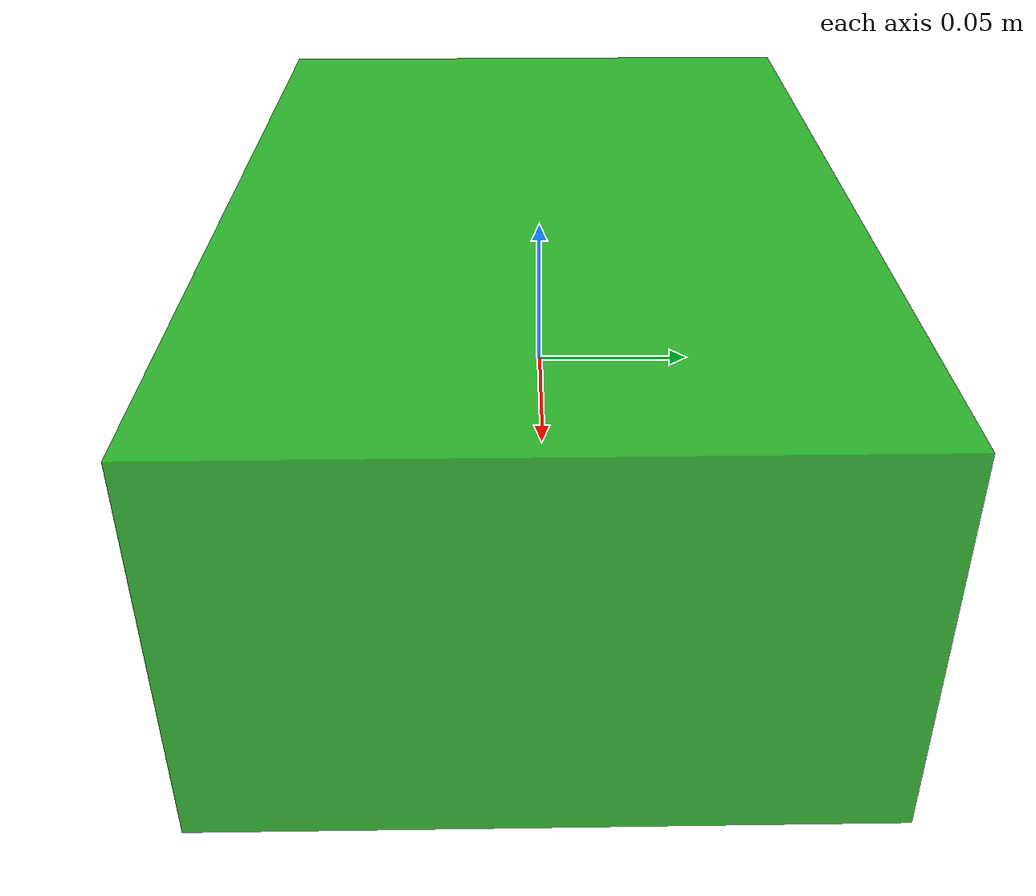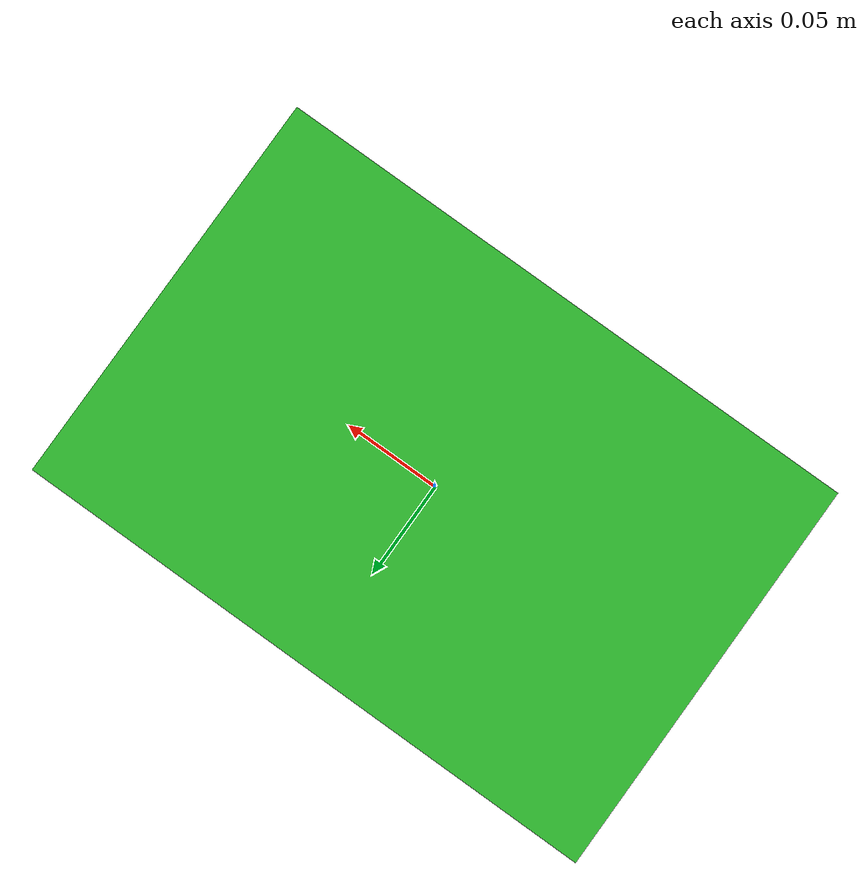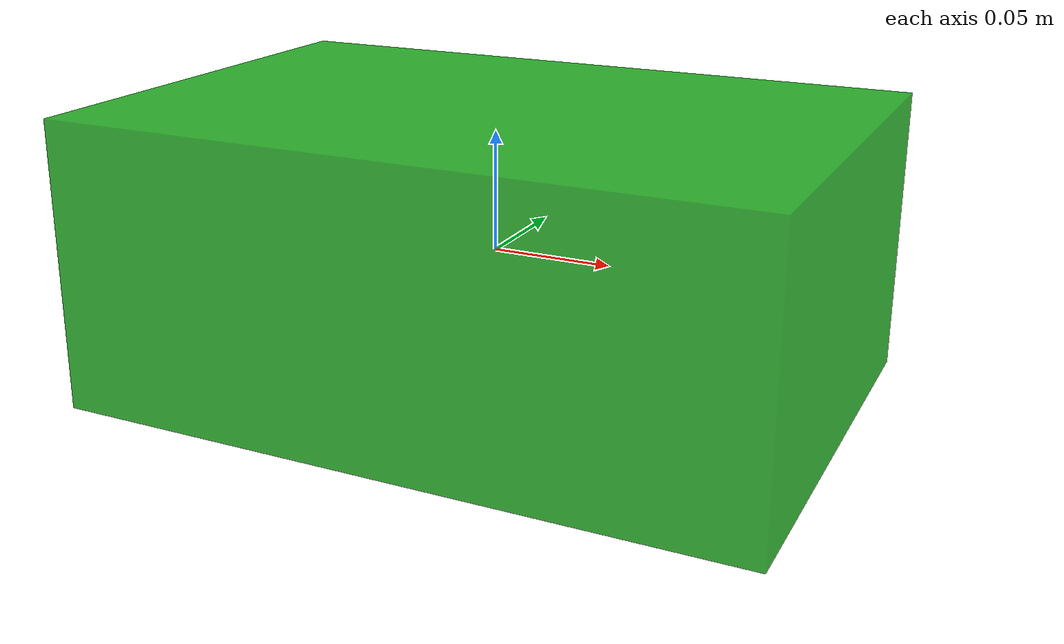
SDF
<?xml version='1.0'?>
<sdf version='1.6'>
  <model name='bin'>
    <link name='link'>
      <self_collide>0</self_collide>
      <kinematic>0</kinematic>
      <pose frame=''>0 0 0 0 0 0</pose>
      <visual name='visual'>
        <geometry>
          <box>
            <size>0.290 0.196 0.121</size>
          </box>
        </geometry>
        <material>
          <ambient>0.0 0.67 0.0 0.8</ambient>
        </material>
        <transparency>0</transparency>
      </visual>
      <gravity>0</gravity>
    </link>
  </model>
</sdf>
